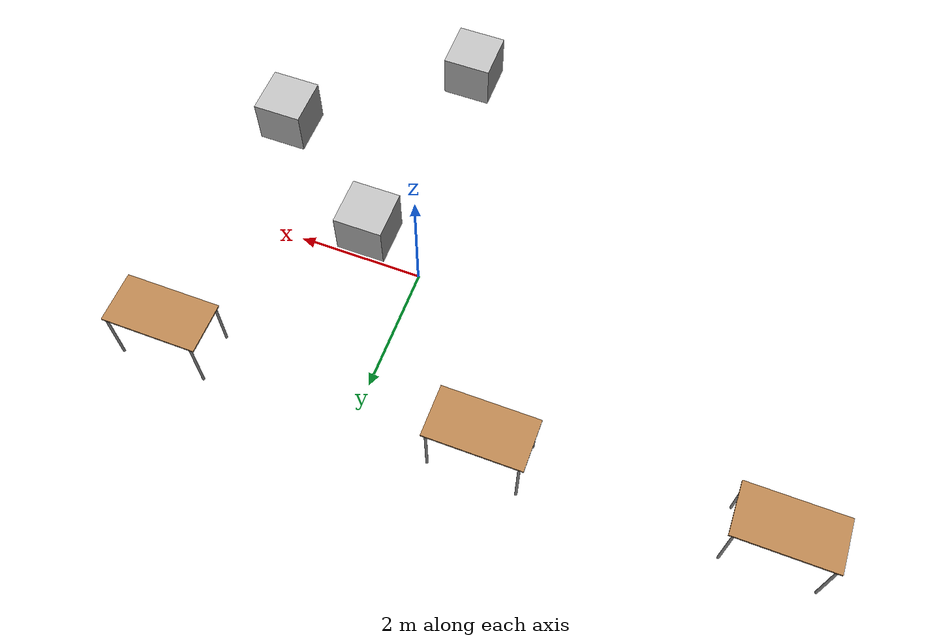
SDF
<?xml version='1.0'?>
<sdf version='1.6'>
  <model name='bedroom2_furniture'>
    <model name='number1'>
      <pose frame=''>3.23228 -2.16034 0.2 0 -0 0</pose>
      <static>1</static>
      <link name='link'>
        <visual name='visual'>
          <geometry>
            <mesh>
              <uri>model://number1/meshes/number.dae</uri>
            </mesh>
          </geometry>
          <material>
            <script>
              <uri>model://number1/materials/scripts</uri>
              <uri>model://number1/materials/textures</uri>
              <name>Number/One</name>
            </script>
          </material>
        </visual>
      </link>
    </model>
    <model name='number5'>
      <pose frame=''>1.08519 -0.551244 0.2 0 -0 0</pose>
      <static>1</static>
      <link name='link'>
        <visual name='visual'>
          <geometry>
            <mesh>
              <uri>model://number1/meshes/number.dae</uri>
            </mesh>
          </geometry>
          <material>
            <script>
              <uri>model://number5/materials/scripts</uri>
              <uri>model://number5/materials/textures</uri>
              <name>Number/Five</name>
            </script>
          </material>
        </visual>
      </link>
    </model>
    <model name='number7'>
      <pose frame=''>0.634616 -4.21464 0.2 0 -0 0</pose>
      <static>1</static>
      <link name='link'>
        <visual name='visual'>
          <geometry>
            <mesh>
              <uri>model://number1/meshes/number.dae</uri>
            </mesh>
          </geometry>
          <material>
            <script>
              <uri>model://number7/materials/scripts</uri>
              <uri>model://number7/materials/textures</uri>
              <name>Number/Seven</name>
            </script>
          </material>
        </visual>
      </link>
    </model>
    <model name='table'>
      <static>1</static>
      <link name='link'>
        <collision name='surface'>
          <pose frame=''>0 0 1 0 -0 0</pose>
          <geometry>
            <box>
              <size>1.5 0.8 0.03</size>
            </box>
          </geometry>
          <surface>
            <friction>
              <ode>
                <mu>0.6</mu>
                <mu2>0.6</mu2>
              </ode>
            </friction>
          </surface>
        </collision>
        <visual name='visual1'>
          <pose frame=''>0 0 1 0 -0 0</pose>
          <geometry>
            <box>
              <size>1.5 0.8 0.03</size>
            </box>
          </geometry>
          <material>
            <script>
              <uri>file://media/materials/scripts/gazebo.material</uri>
              <name>Gazebo/Wood</name>
            </script>
          </material>
        </visual>
        <collision name='front_left_leg'>
          <pose frame=''>0.68 0.38 0.5 0 -0 0</pose>
          <geometry>
            <cylinder>
              <radius>0.02</radius>
              <length>1</length>
            </cylinder>
          </geometry>
        </collision>
        <visual name='front_left_leg'>
          <pose frame=''>0.68 0.38 0.5 0 -0 0</pose>
          <geometry>
            <cylinder>
              <radius>0.02</radius>
              <length>1</length>
            </cylinder>
          </geometry>
          <material>
            <script>
              <uri>file://media/materials/scripts/gazebo.material</uri>
              <name>Gazebo/Grey</name>
            </script>
          </material>
        </visual>
        <collision name='front_right_leg'>
          <pose frame=''>0.68 -0.38 0.5 0 -0 0</pose>
          <geometry>
            <cylinder>
              <radius>0.02</radius>
              <length>1</length>
            </cylinder>
          </geometry>
        </collision>
        <visual name='front_right_leg'>
          <pose frame=''>0.68 -0.38 0.5 0 -0 0</pose>
          <geometry>
            <cylinder>
              <radius>0.02</radius>
              <length>1</length>
            </cylinder>
          </geometry>
          <material>
            <script>
              <uri>file://media/materials/scripts/gazebo.material</uri>
              <name>Gazebo/Grey</name>
            </script>
          </material>
        </visual>
        <collision name='back_right_leg'>
          <pose frame=''>-0.68 -0.38 0.5 0 -0 0</pose>
          <geometry>
            <cylinder>
              <radius>0.02</radius>
              <length>1</length>
            </cylinder>
          </geometry>
        </collision>
        <visual name='back_right_leg'>
          <pose frame=''>-0.68 -0.38 0.5 0 -0 0</pose>
          <geometry>
            <cylinder>
              <radius>0.02</radius>
              <length>1</length>
            </cylinder>
          </geometry>
          <material>
            <script>
              <uri>file://media/materials/scripts/gazebo.material</uri>
              <name>Gazebo/Grey</name>
            </script>
          </material>
        </visual>
        <collision name='back_left_leg'>
          <pose frame=''>-0.68 0.38 0.5 0 -0 0</pose>
          <geometry>
            <cylinder>
              <radius>0.02</radius>
              <length>1</length>
            </cylinder>
          </geometry>
        </collision>
        <visual name='back_left_leg'>
          <pose frame=''>-0.68 0.38 0.5 0 -0 0</pose>
          <geometry>
            <cylinder>
              <radius>0.02</radius>
              <length>1</length>
            </cylinder>
          </geometry>
          <material>
            <script>
              <uri>file://media/materials/scripts/gazebo.material</uri>
              <name>Gazebo/Grey</name>
            </script>
          </material>
        </visual>
      </link>
      <pose frame=''>3.10753 2.32513 -0.2 0 -0 0</pose>
    </model>
    <model name='table_0'>
      <static>1</static>
      <link name='link'>
        <collision name='surface'>
          <pose frame=''>0 0 1 0 -0 0</pose>
          <geometry>
            <box>
              <size>1.5 0.8 0.03</size>
            </box>
          </geometry>
          <surface>
            <friction>
              <ode>
                <mu>0.6</mu>
                <mu2>0.6</mu2>
              </ode>
            </friction>
          </surface>
        </collision>
        <visual name='visual1'>
          <pose frame=''>0 0 1 0 -0 0</pose>
          <geometry>
            <box>
              <size>1.5 0.8 0.03</size>
            </box>
          </geometry>
          <material>
            <script>
              <uri>file://media/materials/scripts/gazebo.material</uri>
              <name>Gazebo/Wood</name>
            </script>
          </material>
        </visual>
        <collision name='front_left_leg'>
          <pose frame=''>0.68 0.38 0.5 0 -0 0</pose>
          <geometry>
            <cylinder>
              <radius>0.02</radius>
              <length>1</length>
            </cylinder>
          </geometry>
        </collision>
        <visual name='front_left_leg'>
          <pose frame=''>0.68 0.38 0.5 0 -0 0</pose>
          <geometry>
            <cylinder>
              <radius>0.02</radius>
              <length>1</length>
            </cylinder>
          </geometry>
          <material>
            <script>
              <uri>file://media/materials/scripts/gazebo.material</uri>
              <name>Gazebo/Grey</name>
            </script>
          </material>
        </visual>
        <collision name='front_right_leg'>
          <pose frame=''>0.68 -0.38 0.5 0 -0 0</pose>
          <geometry>
            <cylinder>
              <radius>0.02</radius>
              <length>1</length>
            </cylinder>
          </geometry>
        </collision>
        <visual name='front_right_leg'>
          <pose frame=''>0.68 -0.38 0.5 0 -0 0</pose>
          <geometry>
            <cylinder>
              <radius>0.02</radius>
              <length>1</length>
            </cylinder>
          </geometry>
          <material>
            <script>
              <uri>file://media/materials/scripts/gazebo.material</uri>
              <name>Gazebo/Grey</name>
            </script>
          </material>
        </visual>
        <collision name='back_right_leg'>
          <pose frame=''>-0.68 -0.38 0.5 0 -0 0</pose>
          <geometry>
            <cylinder>
              <radius>0.02</radius>
              <length>1</length>
            </cylinder>
          </geometry>
        </collision>
        <visual name='back_right_leg'>
          <pose frame=''>-0.68 -0.38 0.5 0 -0 0</pose>
          <geometry>
            <cylinder>
              <radius>0.02</radius>
              <length>1</length>
            </cylinder>
          </geometry>
          <material>
            <script>
              <uri>file://media/materials/scripts/gazebo.material</uri>
              <name>Gazebo/Grey</name>
            </script>
          </material>
        </visual>
        <collision name='back_left_leg'>
          <pose frame=''>-0.68 0.38 0.5 0 -0 0</pose>
          <geometry>
            <cylinder>
              <radius>0.02</radius>
              <length>1</length>
            </cylinder>
          </geometry>
        </collision>
        <visual name='back_left_leg'>
          <pose frame=''>-0.68 0.38 0.5 0 -0 0</pose>
          <geometry>
            <cylinder>
              <radius>0.02</radius>
              <length>1</length>
            </cylinder>
          </geometry>
          <material>
            <script>
              <uri>file://media/materials/scripts/gazebo.material</uri>
              <name>Gazebo/Grey</name>
            </script>
          </material>
        </visual>
      </link>
      <pose frame=''>-1.89242 2.36556 -0.2 0 -0 0</pose>
    </model>
    <model name='table_1'>
      <static>1</static>
      <link name='link'>
        <collision name='surface'>
          <pose frame=''>0 0 1 0 -0 0</pose>
          <geometry>
            <box>
              <size>1.5 0.8 0.03</size>
            </box>
          </geometry>
          <surface>
            <friction>
              <ode>
                <mu>0.6</mu>
                <mu2>0.6</mu2>
              </ode>
            </friction>
          </surface>
        </collision>
        <visual name='visual1'>
          <pose frame=''>0 0 1 0 -0 0</pose>
          <geometry>
            <box>
              <size>1.5 0.8 0.03</size>
            </box>
          </geometry>
          <material>
            <script>
              <uri>file://media/materials/scripts/gazebo.material</uri>
              <name>Gazebo/Wood</name>
            </script>
          </material>
        </visual>
        <collision name='front_left_leg'>
          <pose frame=''>0.68 0.38 0.5 0 -0 0</pose>
          <geometry>
            <cylinder>
              <radius>0.02</radius>
              <length>1</length>
            </cylinder>
          </geometry>
        </collision>
        <visual name='front_left_leg'>
          <pose frame=''>0.68 0.38 0.5 0 -0 0</pose>
          <geometry>
            <cylinder>
              <radius>0.02</radius>
              <length>1</length>
            </cylinder>
          </geometry>
          <material>
            <script>
              <uri>file://media/materials/scripts/gazebo.material</uri>
              <name>Gazebo/Grey</name>
            </script>
          </material>
        </visual>
        <collision name='front_right_leg'>
          <pose frame=''>0.68 -0.38 0.5 0 -0 0</pose>
          <geometry>
            <cylinder>
              <radius>0.02</radius>
              <length>1</length>
            </cylinder>
          </geometry>
        </collision>
        <visual name='front_right_leg'>
          <pose frame=''>0.68 -0.38 0.5 0 -0 0</pose>
          <geometry>
            <cylinder>
              <radius>0.02</radius>
              <length>1</length>
            </cylinder>
          </geometry>
          <material>
            <script>
              <uri>file://media/materials/scripts/gazebo.material</uri>
              <name>Gazebo/Grey</name>
            </script>
          </material>
        </visual>
        <collision name='back_right_leg'>
          <pose frame=''>-0.68 -0.38 0.5 0 -0 0</pose>
          <geometry>
            <cylinder>
              <radius>0.02</radius>
              <length>1</length>
            </cylinder>
          </geometry>
        </collision>
        <visual name='back_right_leg'>
          <pose frame=''>-0.68 -0.38 0.5 0 -0 0</pose>
          <geometry>
            <cylinder>
              <radius>0.02</radius>
              <length>1</length>
            </cylinder>
          </geometry>
          <material>
            <script>
              <uri>file://media/materials/scripts/gazebo.material</uri>
              <name>Gazebo/Grey</name>
            </script>
          </material>
        </visual>
        <collision name='back_left_leg'>
          <pose frame=''>-0.68 0.38 0.5 0 -0 0</pose>
          <geometry>
            <cylinder>
              <radius>0.02</radius>
              <length>1</length>
            </cylinder>
          </geometry>
        </collision>
        <visual name='back_left_leg'>
          <pose frame=''>-0.68 0.38 0.5 0 -0 0</pose>
          <geometry>
            <cylinder>
              <radius>0.02</radius>
              <length>1</length>
            </cylinder>
          </geometry>
          <material>
            <script>
              <uri>file://media/materials/scripts/gazebo.material</uri>
              <name>Gazebo/Grey</name>
            </script>
          </material>
        </visual>
      </link>
      <pose frame=''>-6.16718 2.23553 -0.2 0 -0 0</pose>
    </model>
    <static>0</static>
    <allow_auto_disable>1</allow_auto_disable>
  </model>
</sdf>
